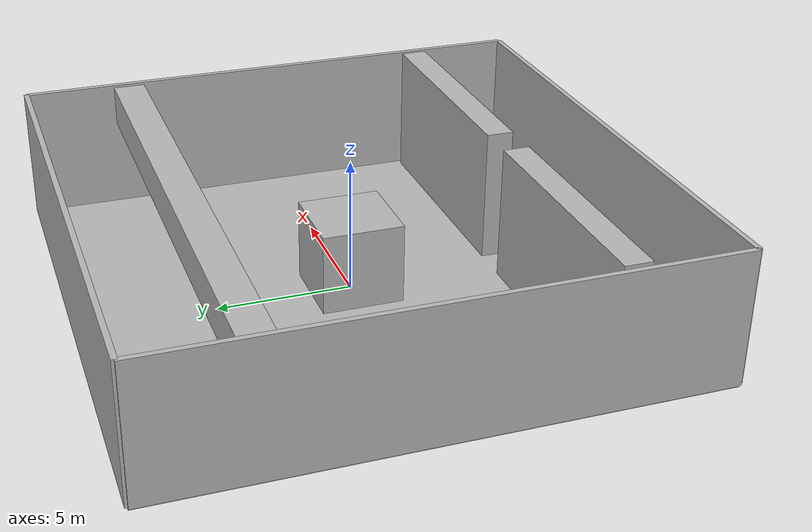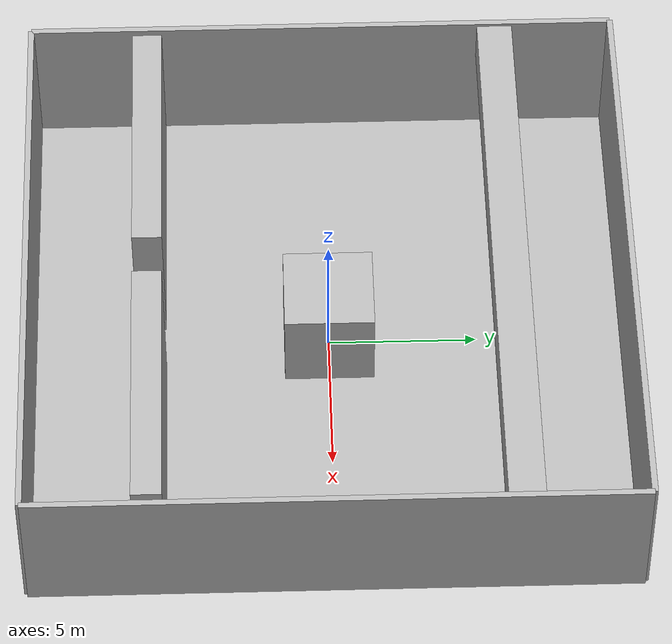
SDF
<sdf version="1.4">
 <world name="default">
  <model name="ground_plane">
   <static>true</static>
   <link name="ground_link">
    <collision name="ground_collision">
     <geometry><box><size>20 20 0.1</size></box></geometry>
     <pose>0 0 -0.05 0 0 0</pose>
    </collision>
    <visual name="ground_visual">
     <geometry><box><size>20 20 0.1</size></box></geometry>
     <material>
      <script>
       <uri>model://wall_materials/materials/scripts</uri>
       <uri>model://wall_materials/materials/textures</uri>
       <name>Walls/Map8</name>
      </script>
     </material>
     <pose>0 0 -0.05 0 0 0</pose>
    </visual>
   </link>
  </model>
  <model name="middle_wall_with_opening">
   <static>true</static>
   <link name="wall_link">
    <collision name="left_wall_part">
     <geometry><box><size>9.0 1 5</size></box></geometry>
     <pose>-5.2 -6.0 2.5 0 0 0</pose>
    </collision>
    <visual name="left_wall_visual">
     <geometry><box><size>9.0 1 5</size></box></geometry>
     <material>
      <script>
       <uri>model://wall_materials/materials/scripts</uri>
       <uri>model://wall_materials/materials/textures</uri>
       <name>Walls/Map1</name>
      </script>
     </material>
     <pose>-5.2 -6.0 2.5 0 0 0</pose>
    </visual>
    <collision name="right_wall_part">
     <geometry><box><size>9.0 1 5</size></box></geometry>
     <pose>5.2 -6.0 2.5 0 0 0</pose>
    </collision>
    <visual name="right_wall_visual">
     <geometry><box><size>9.0 1 5</size></box></geometry>
     <material>
      <script>
       <uri>model://wall_materials/materials/scripts</uri>
       <uri>model://wall_materials/materials/textures</uri>
       <name>Walls/Poster1</name>
      </script>
     </material>
     <pose>5.2 -6.0 2.5 0 0 0</pose>
    </visual>
   </link>
  </model>
  <model name="top_wall">
   <static>true</static>
   <link name="wall_link">
    <collision name="wall_collision">
     <geometry><box><size>20 0.2 5</size></box></geometry>
     <pose>0 10 2.5 0 0 0</pose>
    </collision>
    <visual name="wall_visual">
     <geometry><box><size>20 0.2 5</size></box></geometry>
     <material>
      <script>
       <uri>model://wall_materials/materials/scripts</uri>
       <uri>model://wall_materials/materials/textures</uri>
       <name>Walls/Map2</name>
      </script>
     </material>
     <pose>0 10 2.5 0 0 0</pose>
    </visual>
   </link>
  </model>
  <model name="bottom_wall">
   <static>true</static>
   <link name="wall_link">
    <collision name="wall_collision">
     <geometry><box><size>20 0.2 5</size></box></geometry>
     <pose>0 -10 2.5 0 0 0</pose>
    </collision>
    <visual name="wall_visual">
     <geometry><box><size>20 0.2 5</size></box></geometry>
     <material>
      <script>
       <uri>model://wall_materials/materials/scripts</uri>
       <uri>model://wall_materials/materials/textures</uri>
       <name>Walls/Map3</name>
      </script>
     </material>
     <pose>0 -10 2.5 0 0 0</pose>
    </visual>
   </link>
  </model>
  <model name="left_wall">
   <static>true</static>
   <link name="wall_link">
    <collision name="wall_collision">
     <geometry><box><size>0.2 20 5</size></box></geometry>
     <pose>-10 0 2.5 0 0 0</pose>
    </collision>
    <visual name="wall_visual">
     <geometry><box><size>0.2 20 5</size></box></geometry>
     <material>
      <script>
       <uri>model://wall_materials/materials/scripts</uri>
       <uri>model://wall_materials/materials/textures</uri>
       <name>Walls/Map4</name>
      </script>
     </material>
     <pose>-10 0 2.5 0 0 0</pose>
    </visual>
   </link>
  </model>
  <model name="right_wall">
   <static>true</static>
   <link name="wall_link">
    <collision name="wall_collision">
     <geometry><box><size>0.2 20 5</size></box></geometry>
     <pose>10 0 2.5 0 0 0</pose>
    </collision>
    <visual name="wall_visual">
     <geometry><box><size>0.2 20 5</size></box></geometry>
     <material>
      <script>
       <uri>model://wall_materials/materials/scripts</uri>
       <uri>model://wall_materials/materials/textures</uri>
       <name>Walls/Map5</name>
      </script>
     </material>
     <pose>10 0 2.5 0 0 0</pose>
    </visual>
   </link>
  </model>
  <model name="wall_at_pose_0_5.5_5">
   <static>true</static>
   <link name="wall_link">
    <collision name="wall_collision">
     <geometry><box><size>20 1.2 1.5</size></box></geometry>
     <pose>0 6 4.15 0 0 0</pose>
    </collision>
    <visual name="wall_visual">
     <geometry><box><size>20 1.2 1.5</size></box></geometry>
     <material>
      <script>
       <uri>model://wall_materials/materials/scripts</uri>
       <uri>model://wall_materials/materials/textures</uri>
       <name>Walls/New</name>
      </script>
     </material>
     <pose>0 6 4.15 0 0 0</pose>
    </visual>
   </link>
  </model>
  <model name="center_cube">
   <static>true</static>
   <link name="cube_link">
    <collision name="cube_collision">
     <geometry><box><size>3.0 3.0 3.0</size></box></geometry>
     <pose>0 0 1.5 0 0 0</pose>
    </collision>
    <visual name="cube_visual">
     <geometry><box><size>3.0 3.0 3.0</size></box></geometry>
     <material>
      <script>
       <uri>model://wall_materials/materials/scripts</uri>
       <uri>model://wall_materials/materials/textures</uri>
       <name>Walls/Map7</name>
      </script>
     </material>
     <pose>0 0 1.5 0 0 0</pose>
    </visual>
   </link>
  </model>
 </world>
</sdf>
